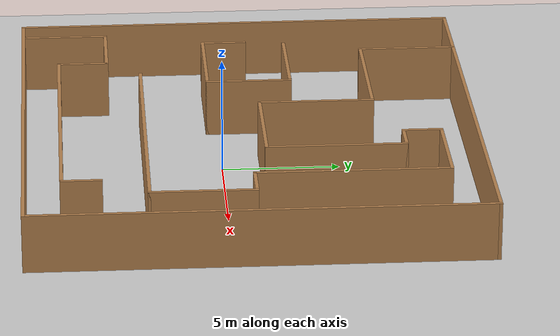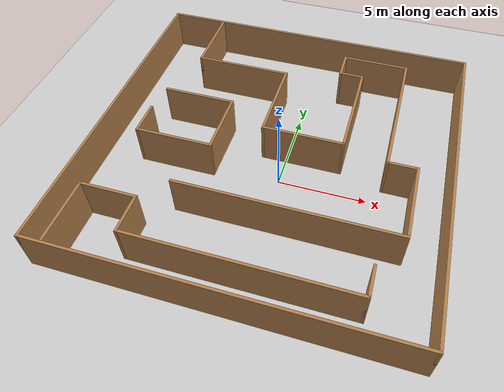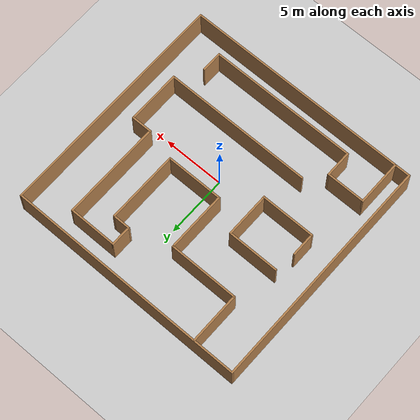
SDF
<sdf version="1.6">
 <world name="default">
  <light name="sun" type="directional">
   <pose>0 0 10 0 -0 0</pose>
   <diffuse>0.8 0.8 0.8 1</diffuse>
   <specular>0.2 0.2 0.2 1</specular>
   <attenuation>
    <range>1000</range>
    <constant>0.9</constant>
    <linear>0.01</linear>
    <quadratic>0.001</quadratic>
   </attenuation>
   <direction>-0.5 0.1 -0.9</direction>
  </light>
  <model name="ground_plane">
   <static>1</static>
   <link name="link">
    <collision name="collision">
     <geometry><plane><normal>0 0 1</normal><size>100 100</size></plane></geometry>
     <surface>
      <contact><collide_bitmask>65535</collide_bitmask></contact>
      <friction><ode><mu>100</mu><mu2>50</mu2></ode></friction>
     </surface>
    </collision>
    <visual name="visual">
     <cast_shadows>0</cast_shadows>
     <geometry><plane><normal>0 0 1</normal><size>100 100</size></plane></geometry>
     <material>
      <script><uri>file://media/materials/scripts/gazebo.material</uri><name>Gazebo/Grey</name></script>
     </material>
    </visual>
   </link>
  </model>
  <gravity>0 0 -9.8</gravity>
  <magnetic_field>6e-06 2.3e-05 -4.2e-05</magnetic_field>
  <atmosphere type="adiabatic"/>
  <physics name="default_physics" default="0" type="ode">
   <max_step_size>0.001</max_step_size>
   <real_time_factor>1</real_time_factor>
   <real_time_update_rate>1000</real_time_update_rate>
  </physics>
  <scene><ambient>0.4 0.4 0.4 1</ambient><background>0.7 0.7 0.7 1</background><shadows>1</shadows></scene>
  <spherical_coordinates>
   <surface_model>EARTH_WGS84</surface_model>
   <latitude_deg>0</latitude_deg>
   <longitude_deg>0</longitude_deg>
   <elevation>0</elevation>
   <heading_deg>0</heading_deg>
  </spherical_coordinates>
  <model name="JD_World">
   <pose>-0.614862 1.12575 0 0 -0 0</pose>
   <link name="Wall_18">
    <collision name="Wall_18_Collision">
     <geometry><box><size>19.75 0.15 2.5</size></box></geometry>
     <pose>0 0 1.25 0 -0 0</pose>
    </collision>
    <visual name="Wall_18_Visual">
     <pose>0 0 1.25 0 -0 0</pose>
     <geometry><box><size>19.75 0.15 2.5</size></box></geometry>
     <material>
      <script><uri>file://media/materials/scripts/gazebo.material</uri><name>Gazebo/Wood</name></script>
      <ambient>1 1 1 1</ambient>
     </material>
     <meta><layer>0</layer></meta>
    </visual>
    <pose>0 9.55 0 0 -0 3.14159</pose>
   </link>
   <link name="Wall_19">
    <collision name="Wall_19_Collision">
     <geometry><box><size>19.25 0.15 2.5</size></box></geometry>
     <pose>0 0 1.25 0 -0 0</pose>
    </collision>
    <visual name="Wall_19_Visual">
     <pose>0 0 1.25 0 -0 0</pose>
     <geometry><box><size>19.25 0.15 2.5</size></box></geometry>
     <material>
      <script><uri>file://media/materials/scripts/gazebo.material</uri><name>Gazebo/Wood</name></script>
      <ambient>1 1 1 1</ambient>
     </material>
     <meta><layer>0</layer></meta>
    </visual>
    <pose>-9.8 -0 0 0 -0 -1.5708</pose>
   </link>
   <link name="Wall_20">
    <collision name="Wall_20_Collision">
     <geometry><box><size>19.75 0.15 2.5</size></box></geometry>
     <pose>0 0 1.25 0 -0 0</pose>
    </collision>
    <visual name="Wall_20_Visual">
     <pose>0 0 1.25 0 -0 0</pose>
     <geometry><box><size>19.75 0.15 2.5</size></box></geometry>
     <material>
      <script><uri>file://media/materials/scripts/gazebo.material</uri><name>Gazebo/Wood</name></script>
      <ambient>1 1 1 1</ambient>
     </material>
     <meta><layer>0</layer></meta>
    </visual>
    <pose>0 -9.55 0 0 -0 0</pose>
   </link>
   <link name="Wall_21">
    <collision name="Wall_21_Collision">
     <geometry><box><size>19.25 0.15 2.5</size></box></geometry>
     <pose>0 0 1.25 0 -0 0</pose>
    </collision>
    <visual name="Wall_21_Visual">
     <pose>0 0 1.25 0 -0 0</pose>
     <geometry><box><size>19.25 0.15 2.5</size></box></geometry>
     <material>
      <script><uri>file://media/materials/scripts/gazebo.material</uri><name>Gazebo/Wood</name></script>
      <ambient>1 1 1 1</ambient>
     </material>
     <meta><layer>0</layer></meta>
    </visual>
    <pose>9.8 -0 0 0 -0 1.5708</pose>
   </link>
   <link name="Wall_24">
    <collision name="Wall_24_Collision">
     <geometry><box><size>4.25 0.15 2.5</size></box></geometry>
     <pose>0 0 1.25 0 -0 0</pose>
    </collision>
    <visual name="Wall_24_Visual">
     <pose>0 0 1.25 0 -0 0</pose>
     <geometry><box><size>4.25 0.15 2.5</size></box></geometry>
     <material>
      <script><uri>file://media/materials/scripts/gazebo.material</uri><name>Gazebo/Wood</name></script>
      <ambient>1 1 1 1</ambient>
     </material>
     <meta><layer>0</layer></meta>
    </visual>
    <pose>-6.39008 7.44882 0 0 -0 -1.5708</pose>
   </link>
   <link name="Wall_25">
    <collision name="Wall_25_Collision">
     <geometry><box><size>5.75 0.15 2.5</size></box></geometry>
     <pose>0 0 1.25 0 -0 0</pose>
    </collision>
    <visual name="Wall_25_Visual">
     <pose>0 0 1.25 0 -0 0</pose>
     <geometry><box><size>5.75 0.15 2.5</size></box></geometry>
     <material>
      <script><uri>file://media/materials/scripts/gazebo.material</uri><name>Gazebo/Wood</name></script>
      <ambient>1 1 1 1</ambient>
     </material>
     <meta><layer>0</layer></meta>
    </visual>
    <pose>-3.59008 5.39882 0 0 -0 0</pose>
   </link>
   <link name="Wall_26">
    <collision name="Wall_26_Collision">
     <geometry><box><size>5 0.15 2.5</size></box></geometry>
     <pose>0 0 1.25 0 -0 0</pose>
    </collision>
    <visual name="Wall_26_Visual">
     <pose>0 0 1.25 0 -0 0</pose>
     <geometry><box><size>5 0.15 2.5</size></box></geometry>
     <material>
      <script><uri>file://media/materials/scripts/gazebo.material</uri><name>Gazebo/Wood</name></script>
      <ambient>1 1 1 1</ambient>
     </material>
     <meta><layer>0</layer></meta>
    </visual>
    <pose>-0.790077 2.97382 0 0 -0 -1.5708</pose>
   </link>
   <link name="Wall_27">
    <collision name="Wall_27_Collision">
     <geometry><box><size>4.75 0.15 2.5</size></box></geometry>
     <pose>0 0 1.25 0 -0 0</pose>
    </collision>
    <visual name="Wall_27_Visual">
     <pose>0 0 1.25 0 -0 0</pose>
     <geometry><box><size>4.75 0.15 2.5</size></box></geometry>
     <material>
      <script><uri>file://media/materials/scripts/gazebo.material</uri><name>Gazebo/Wood</name></script>
      <ambient>1 1 1 1</ambient>
     </material>
     <meta><layer>0</layer></meta>
    </visual>
    <pose>1.50992 0.548824 0 0 -0 0</pose>
   </link>
   <link name="Wall_28">
    <collision name="Wall_28_Collision">
     <geometry><box><size>6 0.15 2.5</size></box></geometry>
     <pose>0 0 1.25 0 -0 0</pose>
    </collision>
    <visual name="Wall_28_Visual">
     <pose>0 0 1.25 0 -0 0</pose>
     <geometry><box><size>6 0.15 2.5</size></box></geometry>
     <material>
      <script><uri>file://media/materials/scripts/gazebo.material</uri><name>Gazebo/Wood</name></script>
      <ambient>1 1 1 1</ambient>
     </material>
     <meta><layer>0</layer></meta>
    </visual>
    <pose>3.80992 3.47382 0 0 -0 1.5708</pose>
   </link>
   <link name="Wall_29">
    <collision name="Wall_29_Collision">
     <geometry><box><size>1.5 0.15 2.5</size></box></geometry>
     <pose>0 0 1.25 0 -0 0</pose>
    </collision>
    <visual name="Wall_29_Visual">
     <pose>0 0 1.25 0 -0 0</pose>
     <geometry><box><size>1.5 0.15 2.5</size></box></geometry>
     <material>
      <script><uri>file://media/materials/scripts/gazebo.material</uri><name>Gazebo/Wood</name></script>
      <ambient>1 1 1 1</ambient>
     </material>
     <meta><layer>0</layer></meta>
    </visual>
    <pose>3.13492 6.39882 0 0 -0 3.14159</pose>
   </link>
   <link name="Wall_30">
    <collision name="Wall_30_Collision">
     <geometry><box><size>1.75 0.15 2.5</size></box></geometry>
     <pose>0 0 1.25 0 -0 0</pose>
    </collision>
    <visual name="Wall_30_Visual">
     <pose>0 0 1.25 0 -0 0</pose>
     <geometry><box><size>1.75 0.15 2.5</size></box></geometry>
     <material>
      <script><uri>file://media/materials/scripts/gazebo.material</uri><name>Gazebo/Wood</name></script>
      <ambient>1 1 1 1</ambient>
     </material>
     <meta><layer>0</layer></meta>
    </visual>
    <pose>2.45992 7.19882 0 0 -0 1.5708</pose>
   </link>
   <link name="Wall_31">
    <collision name="Wall_31_Collision">
     <geometry><box><size>4 0.15 2.5</size></box></geometry>
     <pose>0 0 1.25 0 -0 0</pose>
    </collision>
    <visual name="Wall_31_Visual">
     <pose>0 0 1.25 0 -0 0</pose>
     <geometry><box><size>4 0.15 2.5</size></box></geometry>
     <material>
      <script><uri>file://media/materials/scripts/gazebo.material</uri><name>Gazebo/Wood</name></script>
      <ambient>1 1 1 1</ambient>
     </material>
     <meta><layer>0</layer></meta>
    </visual>
    <pose>4.38492 7.99882 0 0 -0 0</pose>
   </link>
   <link name="Wall_32">
    <collision name="Wall_32_Collision">
     <geometry><box><size>8.25 0.15 2.5</size></box></geometry>
     <pose>0 0 1.25 0 -0 0</pose>
    </collision>
    <visual name="Wall_32_Visual">
     <pose>0 0 1.25 0 -0 0</pose>
     <geometry><box><size>8.25 0.15 2.5</size></box></geometry>
     <material>
      <script><uri>file://media/materials/scripts/gazebo.material</uri><name>Gazebo/Wood</name></script>
      <ambient>1 1 1 1</ambient>
     </material>
     <meta><layer>0</layer></meta>
    </visual>
    <pose>6.30992 3.94882 0 0 -0 -1.5708</pose>
   </link>
   <link name="Wall_33">
    <collision name="Wall_33_Collision">
     <geometry><box><size>1.75 0.15 2.5</size></box></geometry>
     <pose>0 0 1.25 0 -0 0</pose>
    </collision>
    <visual name="Wall_33_Visual">
     <pose>0 0 1.25 0 -0 0</pose>
     <geometry><box><size>1.75 0.15 2.5</size></box></geometry>
     <material>
      <script><uri>file://media/materials/scripts/gazebo.material</uri><name>Gazebo/Wood</name></script>
      <ambient>1 1 1 1</ambient>
     </material>
     <meta><layer>0</layer></meta>
    </visual>
    <pose>7.10992 -0.101176 0 0 -0 0</pose>
   </link>
   <link name="Wall_35">
    <collision name="Wall_35_Collision">
     <geometry><box><size>4.5 0.15 2.5</size></box></geometry>
     <pose>0 0 1.25 0 -0 0</pose>
    </collision>
    <visual name="Wall_35_Visual">
     <pose>0 0 1.25 0 -0 0</pose>
     <geometry><box><size>4.5 0.15 2.5</size></box></geometry>
     <material>
      <script><uri>file://media/materials/scripts/gazebo.material</uri><name>Gazebo/Wood</name></script>
      <ambient>1 1 1 1</ambient>
     </material>
     <meta><layer>0</layer></meta>
    </visual>
    <pose>7.90992 -2.27618 0 0 -0 -1.5708</pose>
   </link>
   <link name="Wall_36">
    <collision name="Wall_36_Collision">
     <geometry><box><size>12.25 0.15 2.5</size></box></geometry>
     <pose>0 0 1.25 0 -0 0</pose>
    </collision>
    <visual name="Wall_36_Visual">
     <pose>0 0 1.25 0 -0 0</pose>
     <geometry><box><size>12.25 0.15 2.5</size></box></geometry>
     <material>
      <script><uri>file://media/materials/scripts/gazebo.material</uri><name>Gazebo/Wood</name></script>
      <ambient>1 1 1 1</ambient>
     </material>
     <meta><layer>0</layer></meta>
    </visual>
    <pose>1.85992 -4.45118 0 0 -0 3.14159</pose>
   </link>
   <link name="Wall_38">
    <collision name="Wall_38_Collision">
     <geometry><box><size>4.25 0.15 2.5</size></box></geometry>
     <pose>0 0 1.25 0 -0 0</pose>
    </collision>
    <visual name="Wall_38_Visual">
     <pose>0 0 1.25 0 -0 0</pose>
     <geometry><box><size>4.25 0.15 2.5</size></box></geometry>
     <material>
      <script><uri>file://media/materials/scripts/gazebo.material</uri><name>Gazebo/Wood</name></script>
      <ambient>1 1 1 1</ambient>
     </material>
     <meta><layer>0</layer></meta>
    </visual>
    <pose>-5.19655 2.03128 0 0 -0 0</pose>
   </link>
   <link name="Wall_39">
    <collision name="Wall_39_Collision">
     <geometry><box><size>3.75 0.15 2.5</size></box></geometry>
     <pose>0 0 1.25 0 -0 0</pose>
    </collision>
    <visual name="Wall_39_Visual">
     <pose>0 0 1.25 0 -0 0</pose>
     <geometry><box><size>3.75 0.15 2.5</size></box></geometry>
     <material>
      <script><uri>file://media/materials/scripts/gazebo.material</uri><name>Gazebo/Wood</name></script>
      <ambient>1 1 1 1</ambient>
     </material>
     <meta><layer>0</layer></meta>
    </visual>
    <pose>-3.14655 0.231277 0 0 -0 -1.5708</pose>
   </link>
   <link name="Wall_40">
    <collision name="Wall_40_Collision">
     <geometry><box><size>4.5 0.15 2.5</size></box></geometry>
     <pose>0 0 1.25 0 -0 0</pose>
    </collision>
    <visual name="Wall_40_Visual">
     <pose>0 0 1.25 0 -0 0</pose>
     <geometry><box><size>4.5 0.15 2.5</size></box></geometry>
     <material>
      <script><uri>file://media/materials/scripts/gazebo.material</uri><name>Gazebo/Wood</name></script>
      <ambient>1 1 1 1</ambient>
     </material>
     <meta><layer>0</layer></meta>
    </visual>
    <pose>-5.32155 -1.56872 0 0 -0 3.14159</pose>
   </link>
   <link name="Wall_41">
    <collision name="Wall_41_Collision">
     <geometry><box><size>2 0.15 2.5</size></box></geometry>
     <pose>0 0 1.25 0 -0 0</pose>
    </collision>
    <visual name="Wall_41_Visual">
     <pose>0 0 1.25 0 -0 0</pose>
     <geometry><box><size>2 0.15 2.5</size></box></geometry>
     <material>
      <script><uri>file://media/materials/scripts/gazebo.material</uri><name>Gazebo/Wood</name></script>
      <ambient>1 1 1 1</ambient>
     </material>
     <meta><layer>0</layer></meta>
    </visual>
    <pose>-7.49655 -0.643723 0 0 -0 1.5708</pose>
   </link>
   <link name="Wall_43">
    <collision name="Wall_43_Collision">
     <geometry><box><size>3.75 0.15 2.5</size></box></geometry>
     <pose>0 0 1.25 0 -0 0</pose>
    </collision>
    <visual name="Wall_43_Visual">
     <pose>0 0 1.25 0 -0 0</pose>
     <geometry><box><size>3.75 0.15 2.5</size></box></geometry>
     <material>
      <script><uri>file://media/materials/scripts/gazebo.material</uri><name>Gazebo/Wood</name></script>
      <ambient>1 1 1 1</ambient>
     </material>
     <meta><layer>0</layer></meta>
    </visual>
    <pose>-8.55915 -7.69495 0 0 -0 1.5708</pose>
   </link>
   <link name="Wall_44">
    <collision name="Wall_44_Collision">
     <geometry><box><size>3.25 0.15 2.5</size></box></geometry>
     <pose>0 0 1.25 0 -0 0</pose>
    </collision>
    <visual name="Wall_44_Visual">
     <pose>0 0 1.25 0 -0 0</pose>
     <geometry><box><size>3.25 0.15 2.5</size></box></geometry>
     <material>
      <script><uri>file://media/materials/scripts/gazebo.material</uri><name>Gazebo/Wood</name></script>
      <ambient>1 1 1 1</ambient>
     </material>
     <meta><layer>0</layer></meta>
    </visual>
    <pose>-7.00915 -5.89495 0 0 -0 0</pose>
   </link>
   <link name="Wall_45">
    <collision name="Wall_45_Collision">
     <geometry><box><size>2.25 0.15 2.5</size></box></geometry>
     <pose>0 0 1.25 0 -0 0</pose>
    </collision>
    <visual name="Wall_45_Visual">
     <pose>0 0 1.25 0 -0 0</pose>
     <geometry><box><size>2.25 0.15 2.5</size></box></geometry>
     <material>
      <script><uri>file://media/materials/scripts/gazebo.material</uri><name>Gazebo/Wood</name></script>
      <ambient>1 1 1 1</ambient>
     </material>
     <meta><layer>0</layer></meta>
    </visual>
    <pose>-5.45915 -6.94495 0 0 -0 -1.5708</pose>
   </link>
   <link name="Wall_46">
    <collision name="Wall_46_Collision">
     <geometry><box><size>12.25 0.15 2.5</size></box></geometry>
     <pose>0 0 1.25 0 -0 0</pose>
    </collision>
    <visual name="Wall_46_Visual">
     <pose>0 0 1.25 0 -0 0</pose>
     <geometry><box><size>12.25 0.15 2.5</size></box></geometry>
     <material>
      <script><uri>file://media/materials/scripts/gazebo.material</uri><name>Gazebo/Wood</name></script>
      <ambient>1 1 1 1</ambient>
     </material>
     <meta><layer>0</layer></meta>
    </visual>
    <pose>0.590852 -7.99495 0 0 -0 0</pose>
   </link>
   <link name="Wall_47">
    <collision name="Wall_47_Collision">
     <geometry><box><size>1.75 0.15 2.5</size></box></geometry>
     <pose>0 0 1.25 0 -0 0</pose>
    </collision>
    <visual name="Wall_47_Visual">
     <pose>0 0 1.25 0 -0 0</pose>
     <geometry><box><size>1.75 0.15 2.5</size></box></geometry>
     <material>
      <script><uri>file://media/materials/scripts/gazebo.material</uri><name>Gazebo/Wood</name></script>
      <ambient>1 1 1 1</ambient>
     </material>
     <meta><layer>0</layer></meta>
    </visual>
    <pose>6.64085 -7.19495 0 0 -0 1.5708</pose>
   </link>
   <static>1</static>
  </model>
 </world>
</sdf>
